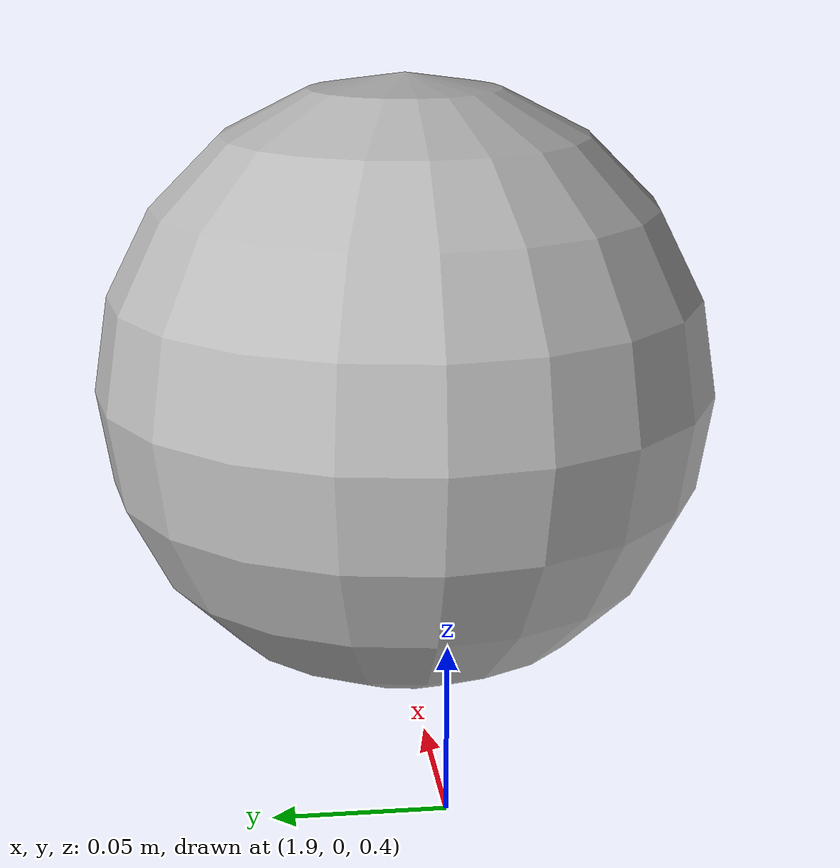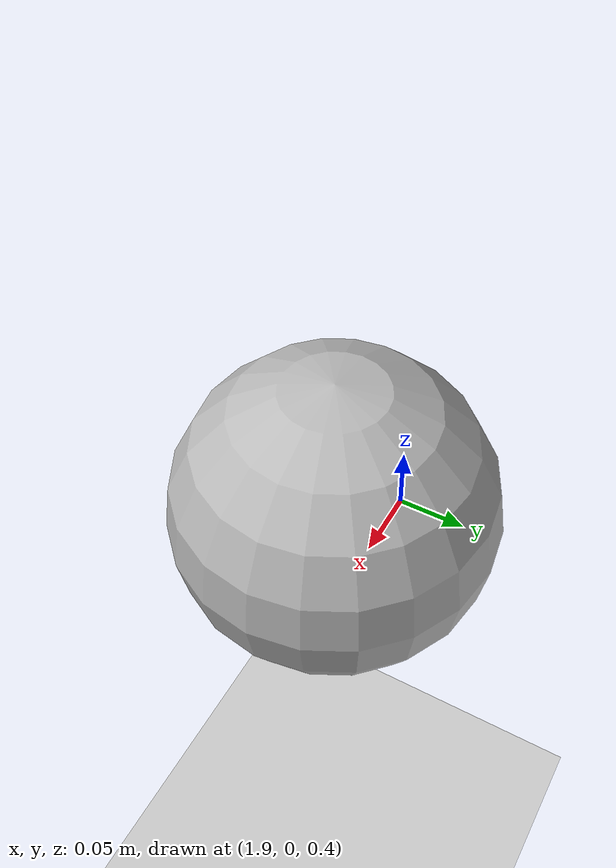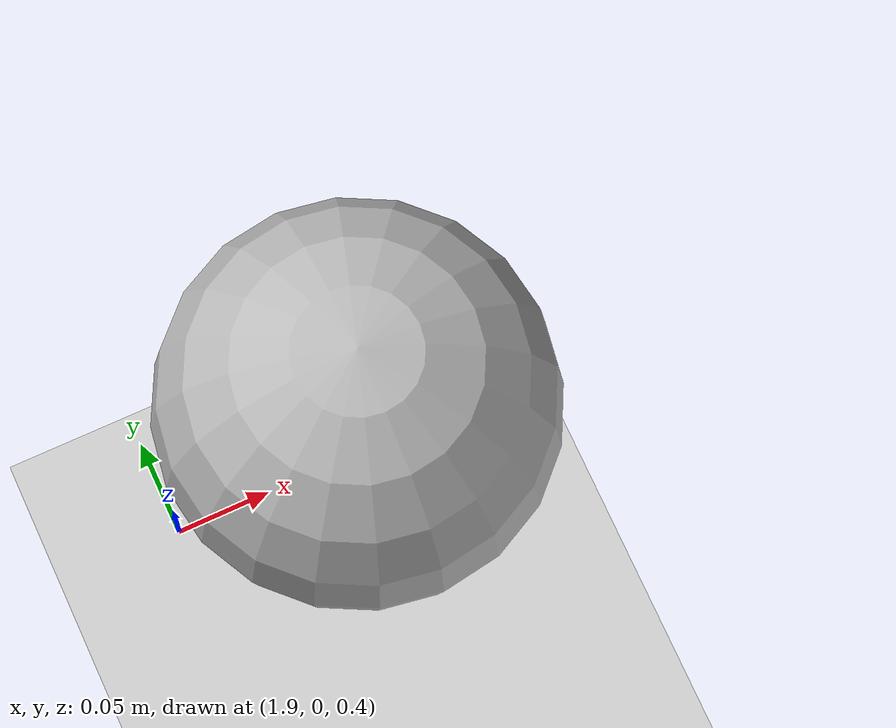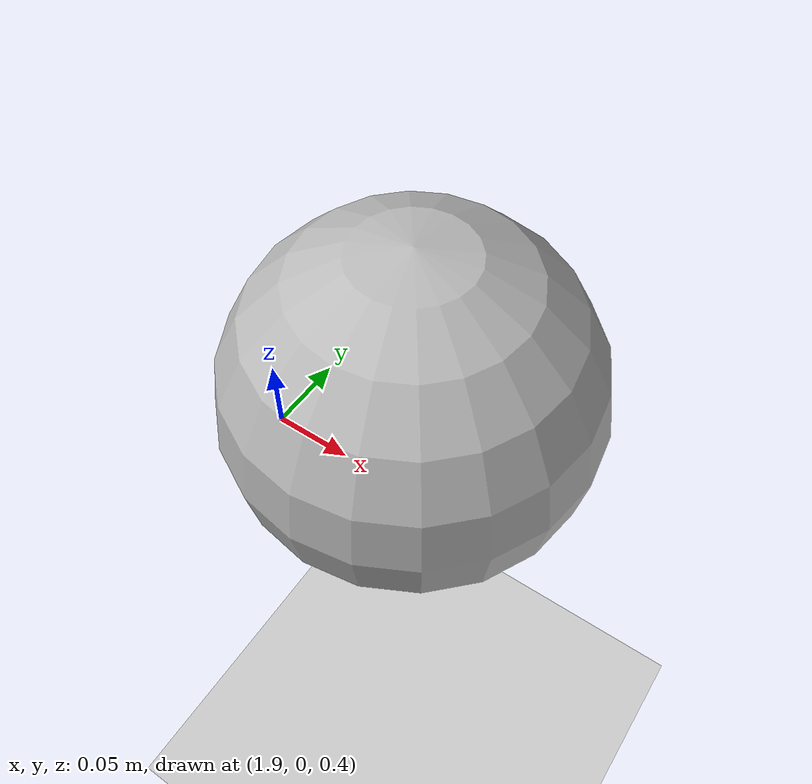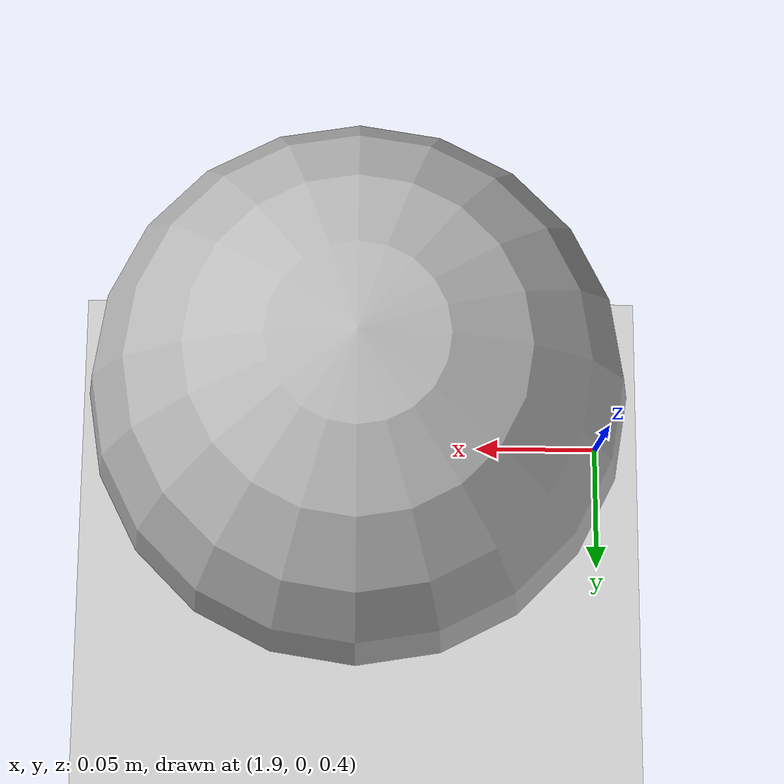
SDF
<?xml version="1.0"?>
<sdf version="1.6">
  <world name="default">
    <physics name="default_physics" default="0" type="ode">
      <max_step_size>0.001</max_step_size>
      <real_time_factor>1</real_time_factor>
      <real_time_update_rate>1000</real_time_update_rate>
      <ode>
        <solver>
          <type>quick</type>
          <iters>50</iters>
          <sor>1.0</sor> <!-- Important, see issue #2209 -->
          <use_dynamic_moi_rescaling>false</use_dynamic_moi_rescaling>
        </solver>
      </ode>
    </physics>
    <include>
      <uri>model://ground_plane</uri>
    </include>
    <include>
      <uri>model://sun</uri>
    </include>
    <model name="model_1">
      <link name="link_1">
        <pose>2.0 0 0.5 0 0 0</pose>
        <inertial>
          <inertia>
            <ixx>0.100000</ixx>
            <ixy>0.000000</ixy>
            <ixz>0.000000</ixz>
            <iyy>0.100000</iyy>
            <iyz>0.000000</iyz>
            <izz>0.100000</izz>
          </inertia>
          <mass>10.000000</mass>
        </inertial>
        <visual name="visual_sphere">
          <geometry>
            <sphere>
              <radius>0.100000</radius>
            </sphere>
          </geometry>
        </visual>
        <collision name="collision_sphere">
          <max_contacts>250</max_contacts>
          <geometry>
            <sphere>
              <radius>0.100000</radius>
            </sphere>
          </geometry>
        </collision>
      </link>
      <joint name="joint_01" type="fixed">
        <parent>world</parent>
        <child>link_1</child>
        <pose>-1.5 0 0 0 0 0</pose>
        <sensor name="force_torque" type="force_torque">
          <always_on>true</always_on>
          <update_rate>1000</update_rate>
          <visualize>false</visualize>

        </sensor>
      </joint>
    </model>
  </world>
</sdf>
